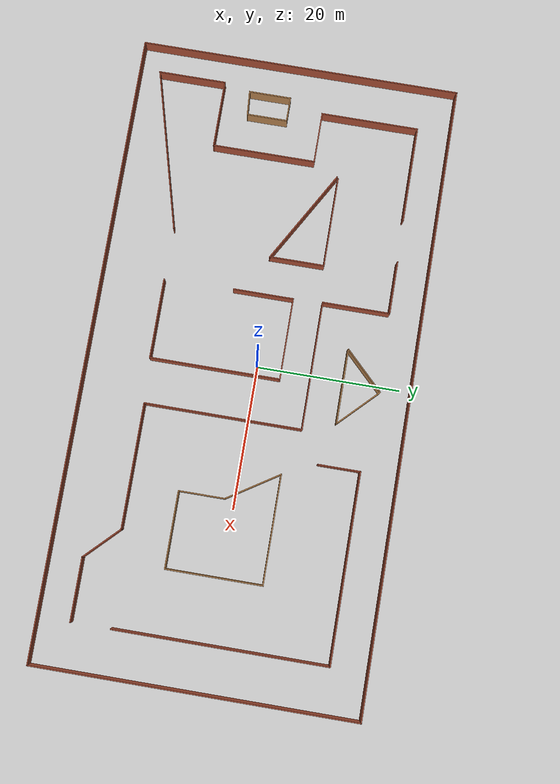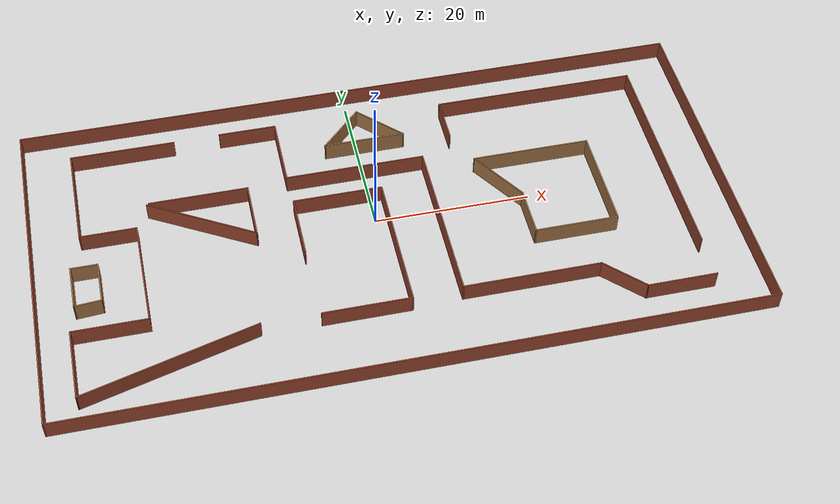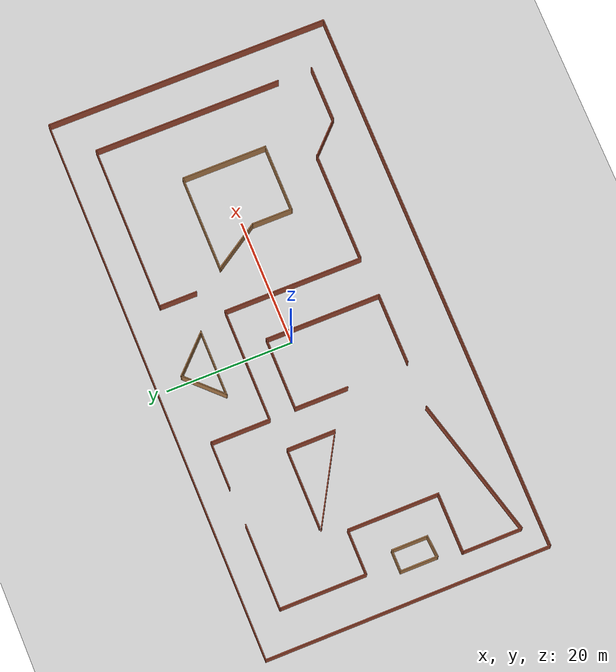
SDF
<sdf version="1.6">
 <world name="default">
  <model name="ground_plane">
   <static>1</static>
   <link name="link">
    <collision name="collision">
     <geometry><plane><normal>0 0 1</normal><size>100 100</size></plane></geometry>
     <surface><friction><ode><mu>100</mu><mu2>50</mu2></ode></friction></surface>
    </collision>
    <visual name="visual">
     <cast_shadows>0</cast_shadows>
     <geometry><plane><normal>0 0 1</normal><size>100 100</size></plane></geometry>
     <material>
      <script><uri>file://media/materials/scripts/gazebo.material</uri><name>Gazebo/Tertiary</name></script>
     </material>
    </visual>
   </link>
  </model>
  <light name="sun" type="directional">
   <pose>0 0 10 0 -0 0</pose>
   <diffuse>0.8 0.8 0.8 1</diffuse>
   <specular>0.2 0.2 0.2 1</specular>
   <attenuation>
    <range>1000</range>
    <constant>0.9</constant>
    <linear>0.01</linear>
    <quadratic>0.001</quadratic>
   </attenuation>
   <direction>-0.5 0.1 -0.9</direction>
  </light>
  <model name="maze_office">
   <pose>0.883362 -0.984451 0 0 -0 0</pose>
   <link name="Wall_10">
    <collision name="Wall_10_Collision">
     <geometry><box><size>13.5 0.15 2.5</size></box></geometry>
     <pose>0 0 1.25 0 -0 0</pose>
    </collision>
    <visual name="Wall_10_Visual">
     <pose>0 0 1.25 0 -0 0</pose>
     <geometry><box><size>13.5 0.15 2.5</size></box></geometry>
     <material>
      <script><uri>file://media/materials/scripts/gazebo.material</uri><name>Gazebo/Bricks</name></script>
      <ambient>1 1 1 1</ambient>
     </material>
     <meta><layer>0</layer></meta>
    </visual>
    <pose>-31.0468 17.7223 0 0 -0 3.14159</pose>
   </link>
   <link name="Wall_11">
    <collision name="Wall_11_Collision">
     <geometry><box><size>13.75 0.15 2.5</size></box></geometry>
     <pose>0 0 1.25 0 -0 0</pose>
    </collision>
    <visual name="Wall_11_Visual">
     <pose>0 0 1.25 0 -0 0</pose>
     <geometry><box><size>13.75 0.15 2.5</size></box></geometry>
     <material>
      <script><uri>file://media/materials/scripts/gazebo.material</uri><name>Gazebo/Bricks</name></script>
      <ambient>1 1 1 1</ambient>
     </material>
     <meta><layer>0</layer></meta>
    </visual>
    <pose>-37.7218 10.9223 0 0 -0 -1.5708</pose>
   </link>
   <link name="Wall_12">
    <collision name="Wall_12_Collision">
     <geometry><box><size>7.25 0.15 2.5</size></box></geometry>
     <pose>0 0 1.25 0 -0 0</pose>
    </collision>
    <visual name="Wall_12_Visual">
     <pose>0 0 1.25 0 -0 0</pose>
     <geometry><box><size>7.25 0.15 2.5</size></box></geometry>
     <material>
      <script><uri>file://media/materials/scripts/gazebo.material</uri><name>Gazebo/Bricks</name></script>
      <ambient>1 1 1 1</ambient>
     </material>
     <meta><layer>0</layer></meta>
    </visual>
    <pose>-34.1718 4.12233 0 0 -0 0</pose>
   </link>
   <link name="Wall_13">
    <collision name="Wall_13_Collision">
     <geometry><box><size>14.5 0.15 2.5</size></box></geometry>
     <pose>0 0 1.25 0 -0 0</pose>
    </collision>
    <visual name="Wall_13_Visual">
     <pose>0 0 1.25 0 -0 0</pose>
     <geometry><box><size>14.5 0.15 2.5</size></box></geometry>
     <material>
      <script><uri>file://media/materials/scripts/gazebo.material</uri><name>Gazebo/Bricks</name></script>
      <ambient>1 1 1 1</ambient>
     </material>
     <meta><layer>0</layer></meta>
    </visual>
    <pose>-30.6218 -3.05267 0 0 -0 -1.5708</pose>
   </link>
   <link name="Wall_14">
    <collision name="Wall_14_Collision">
     <geometry><box><size>9.5 0.15 2.5</size></box></geometry>
     <pose>0 0 1.25 0 -0 0</pose>
    </collision>
    <visual name="Wall_14_Visual">
     <pose>0 0 1.25 0 -0 0</pose>
     <geometry><box><size>9.5 0.15 2.5</size></box></geometry>
     <material>
      <script><uri>file://media/materials/scripts/gazebo.material</uri><name>Gazebo/Bricks</name></script>
      <ambient>1 1 1 1</ambient>
     </material>
     <meta><layer>0</layer></meta>
    </visual>
    <pose>-35.2968 -10.2277 0 0 -0 3.14159</pose>
   </link>
   <link name="Wall_15">
    <collision name="Wall_15_Collision">
     <geometry><box><size>9.5 0.15 2.5</size></box></geometry>
     <pose>0 0 1.25 0 -0 0</pose>
    </collision>
    <visual name="Wall_15_Visual">
     <pose>0 0 1.25 0 -0 0</pose>
     <geometry><box><size>9.5 0.15 2.5</size></box></geometry>
     <material>
      <script><uri>file://media/materials/scripts/gazebo.material</uri><name>Gazebo/Bricks</name></script>
      <ambient>1 1 1 1</ambient>
     </material>
     <meta><layer>0</layer></meta>
    </visual>
    <pose>-39.9718 -14.9027 0 0 -0 -1.5708</pose>
   </link>
   <link name="Wall_17">
    <collision name="Wall_17_Collision">
     <geometry><box><size>23 0.15 2.5</size></box></geometry>
     <pose>0 0 1.25 0 -0 0</pose>
    </collision>
    <visual name="Wall_17_Visual">
     <pose>0 0 1.25 0 -0 0</pose>
     <geometry><box><size>23 0.15 2.5</size></box></geometry>
     <material>
      <script><uri>file://media/materials/scripts/gazebo.material</uri><name>Gazebo/Bricks</name></script>
      <ambient>1 1 1 1</ambient>
     </material>
     <meta><layer>0</layer></meta>
    </visual>
    <pose>-28.9361 -16.6207 0 0 -0 0.261799</pose>
   </link>
   <link name="Wall_19">
    <collision name="Wall_19_Collision">
     <geometry><box><size>11.25 0.15 2.5</size></box></geometry>
     <pose>0 0 1.25 0 -0 0</pose>
    </collision>
    <visual name="Wall_19_Visual">
     <pose>0 0 1.25 0 -0 0</pose>
     <geometry><box><size>11.25 0.15 2.5</size></box></geometry>
     <material>
      <script><uri>file://media/materials/scripts/gazebo.material</uri><name>Gazebo/Bricks</name></script>
      <ambient>1 1 1 1</ambient>
     </material>
     <meta><layer>0</layer></meta>
    </visual>
    <pose>-4.96128 -13.7113 0 0 -0 0</pose>
   </link>
   <link name="Wall_20">
    <collision name="Wall_20_Collision">
     <geometry><box><size>18.25 0.15 2.5</size></box></geometry>
     <pose>0 0 1.25 0 -0 0</pose>
    </collision>
    <visual name="Wall_20_Visual">
     <pose>0 0 1.25 0 -0 0</pose>
     <geometry><box><size>18.25 0.15 2.5</size></box></geometry>
     <material>
      <script><uri>file://media/materials/scripts/gazebo.material</uri><name>Gazebo/Bricks</name></script>
      <ambient>1 1 1 1</ambient>
     </material>
     <meta><layer>0</layer></meta>
    </visual>
    <pose>0.588724 -4.66132 0 0 -0 1.5708</pose>
   </link>
   <link name="Wall_21">
    <collision name="Wall_21_Collision">
     <geometry><box><size>11.5 0.15 2.5</size></box></geometry>
     <pose>0 0 1.25 0 -0 0</pose>
    </collision>
    <visual name="Wall_21_Visual">
     <pose>0 0 1.25 0 -0 0</pose>
     <geometry><box><size>11.5 0.15 2.5</size></box></geometry>
     <material>
      <script><uri>file://media/materials/scripts/gazebo.material</uri><name>Gazebo/Bricks</name></script>
      <ambient>1 1 1 1</ambient>
     </material>
     <meta><layer>0</layer></meta>
    </visual>
    <pose>-5.08628 4.38868 0 0 -0 3.14159</pose>
   </link>
   <link name="Wall_22">
    <collision name="Wall_22_Collision">
     <geometry><box><size>8.5 0.15 2.5</size></box></geometry>
     <pose>0 0 1.25 0 -0 0</pose>
    </collision>
    <visual name="Wall_22_Visual">
     <pose>0 0 1.25 0 -0 0</pose>
     <geometry><box><size>8.5 0.15 2.5</size></box></geometry>
     <material>
      <script><uri>file://media/materials/scripts/gazebo.material</uri><name>Gazebo/Bricks</name></script>
      <ambient>1 1 1 1</ambient>
     </material>
     <meta><layer>0</layer></meta>
    </visual>
    <pose>-10.7613 0.213675 0 0 -0 -1.5708</pose>
   </link>
   <link name="Wall_24">
    <collision name="Wall_24_Collision">
     <geometry><box><size>7.5 0.15 2.5</size></box></geometry>
     <pose>0 0 1.25 0 -0 0</pose>
    </collision>
    <visual name="Wall_24_Visual">
     <pose>0 0 1.25 0 -0 0</pose>
     <geometry><box><size>7.5 0.15 2.5</size></box></geometry>
     <material>
      <script><uri>file://media/materials/scripts/gazebo.material</uri><name>Gazebo/Bricks</name></script>
      <ambient>1 1 1 1</ambient>
     </material>
     <meta><layer>0</layer></meta>
    </visual>
    <pose>-14.6328 17.8461 0 0 -0 0</pose>
   </link>
   <link name="Wall_25">
    <collision name="Wall_25_Collision">
     <geometry><box><size>9.5 0.15 2.5</size></box></geometry>
     <pose>0 0 1.25 0 -0 0</pose>
    </collision>
    <visual name="Wall_25_Visual">
     <pose>0 0 1.25 0 -0 0</pose>
     <geometry><box><size>9.5 0.15 2.5</size></box></geometry>
     <material>
      <script><uri>file://media/materials/scripts/gazebo.material</uri><name>Gazebo/Bricks</name></script>
      <ambient>1 1 1 1</ambient>
     </material>
     <meta><layer>0</layer></meta>
    </visual>
    <pose>-10.9578 13.1711 0 0 -0 -1.5708</pose>
   </link>
   <link name="Wall_26">
    <collision name="Wall_26_Collision">
     <geometry><box><size>18 0.15 2.5</size></box></geometry>
     <pose>0 0 1.25 0 -0 0</pose>
    </collision>
    <visual name="Wall_26_Visual">
     <pose>0 0 1.25 0 -0 0</pose>
     <geometry><box><size>18 0.15 2.5</size></box></geometry>
     <material>
      <script><uri>file://media/materials/scripts/gazebo.material</uri><name>Gazebo/Bricks</name></script>
      <ambient>1 1 1 1</ambient>
     </material>
     <meta><layer>0</layer></meta>
    </visual>
    <pose>-2.03281 8.49608 0 0 -0 0</pose>
   </link>
   <link name="Wall_27">
    <collision name="Wall_27_Collision">
     <geometry><box><size>22 0.15 2.5</size></box></geometry>
     <pose>0 0 1.25 0 -0 0</pose>
    </collision>
    <visual name="Wall_27_Visual">
     <pose>0 0 1.25 0 -0 0</pose>
     <geometry><box><size>22 0.15 2.5</size></box></geometry>
     <material>
      <script><uri>file://media/materials/scripts/gazebo.material</uri><name>Gazebo/Bricks</name></script>
      <ambient>1 1 1 1</ambient>
     </material>
     <meta><layer>0</layer></meta>
    </visual>
    <pose>6.89219 -2.42892 0 0 -0 -1.5708</pose>
   </link>
   <link name="Wall_28">
    <collision name="Wall_28_Collision">
     <geometry><box><size>17.5 0.15 2.5</size></box></geometry>
     <pose>0 0 1.25 0 -0 0</pose>
    </collision>
    <visual name="Wall_28_Visual">
     <pose>0 0 1.25 0 -0 0</pose>
     <geometry><box><size>17.5 0.15 2.5</size></box></geometry>
     <material>
      <script><uri>file://media/materials/scripts/gazebo.material</uri><name>Gazebo/Bricks</name></script>
      <ambient>1 1 1 1</ambient>
     </material>
     <meta><layer>0</layer></meta>
    </visual>
    <pose>15.5672 -13.3539 0 0 -0 0</pose>
   </link>
   <link name="Wall_29">
    <collision name="Wall_29_Collision">
     <geometry><box><size>6.5 0.15 2.5</size></box></geometry>
     <pose>0 0 1.25 0 -0 0</pose>
    </collision>
    <visual name="Wall_29_Visual">
     <pose>0 0 1.25 0 -0 0</pose>
     <geometry><box><size>6.5 0.15 2.5</size></box></geometry>
     <material>
      <script><uri>file://media/materials/scripts/gazebo.material</uri><name>Gazebo/Bricks</name></script>
      <ambient>1 1 1 1</ambient>
     </material>
     <meta><layer>0</layer></meta>
    </visual>
    <pose>26.4873 -15.599 0 0 -0 -0.785398</pose>
   </link>
   <link name="Wall_3">
    <collision name="Wall_3_Collision">
     <geometry><box><size>88 0.15 2.5</size></box></geometry>
     <pose>0 0 1.25 0 -0 0</pose>
    </collision>
    <visual name="Wall_3_Visual">
     <pose>0 0 1.25 0 -0 0</pose>
     <geometry><box><size>88 0.15 2.5</size></box></geometry>
     <material>
      <script><uri>file://media/materials/scripts/gazebo.material</uri><name>Gazebo/Bricks</name></script>
      <ambient>1 1 1 1</ambient>
     </material>
     <meta><layer>0</layer></meta>
    </visual>
    <pose>-1e-06 22.425 0 0 -0 0</pose>
   </link>
   <link name="Wall_30">
    <collision name="Wall_30_Collision">
     <geometry><box><size>8.88621 0.15 2.5</size></box></geometry>
     <pose>0 0 1.25 0 -0 0</pose>
    </collision>
    <visual name="Wall_30_Visual">
     <pose>0 0 1.25 0 -0 0</pose>
     <geometry><box><size>8.88621 0.15 2.5</size></box></geometry>
     <material>
      <script><uri>file://media/materials/scripts/gazebo.material</uri><name>Gazebo/Bricks</name></script>
      <ambient>1 1 1 1</ambient>
     </material>
     <meta><layer>0</layer></meta>
    </visual>
    <pose>33.1004 -17.844 0 0 -0 0</pose>
   </link>
   <link name="Wall_32">
    <collision name="Wall_32_Collision">
     <geometry><box><size>26.3862 0.15 2.5</size></box></geometry>
     <pose>0 0 1.25 0 -0 0</pose>
    </collision>
    <visual name="Wall_32_Visual">
     <pose>0 0 1.25 0 -0 0</pose>
     <geometry><box><size>26.3862 0.15 2.5</size></box></geometry>
     <material>
      <script><uri>file://media/materials/scripts/gazebo.material</uri><name>Gazebo/Bricks</name></script>
      <ambient>1 1 1 1</ambient>
     </material>
     <meta><layer>0</layer></meta>
    </visual>
    <pose>24.3504 17.256 0 0 -0 3.14159</pose>
   </link>
   <link name="Wall_33">
    <collision name="Wall_33_Collision">
     <geometry><box><size>6 0.15 2.5</size></box></geometry>
     <pose>0 0 1.25 0 -0 0</pose>
    </collision>
    <visual name="Wall_33_Visual">
     <pose>0 0 1.25 0 -0 0</pose>
     <geometry><box><size>6 0.15 2.5</size></box></geometry>
     <material>
      <script><uri>file://media/materials/scripts/gazebo.material</uri><name>Gazebo/Bricks</name></script>
      <ambient>1 1 1 1</ambient>
     </material>
     <meta><layer>0</layer></meta>
    </visual>
    <pose>11.2323 14.331 0 0 -0 -1.5708</pose>
   </link>
   <link name="Wall_35">
    <collision name="Wall_35_Collision">
     <geometry><box><size>29.75 0.15 2.5</size></box></geometry>
     <pose>0 0 1.25 0 -0 0</pose>
    </collision>
    <visual name="Wall_35_Visual">
     <pose>0 0 1.25 0 -0 0</pose>
     <geometry><box><size>29.75 0.15 2.5</size></box></geometry>
     <material>
      <script><uri>file://media/materials/scripts/gazebo.material</uri><name>Gazebo/Bricks</name></script>
      <ambient>1 1 1 1</ambient>
     </material>
     <meta><layer>0</layer></meta>
    </visual>
    <pose>37.4685 2.45595 0 0 -0 -1.5708</pose>
   </link>
   <link name="Wall_37">
    <collision name="Wall_37_Collision">
     <geometry><box><size>12.75 0.15 2.5</size></box></geometry>
     <pose>0 0 1.25 0 -0 0</pose>
    </collision>
    <visual name="Wall_37_Visual">
     <pose>0 0 1.25 0 -0 0</pose>
     <geometry><box><size>12.75 0.15 2.5</size></box></geometry>
     <material>
      <script><uri>file://media/materials/scripts/gazebo.material</uri><name>Gazebo/Bricks</name></script>
      <ambient>1 1 1 1</ambient>
     </material>
     <meta><layer>0</layer></meta>
    </visual>
    <pose>-22.4032 7.82196 0 0 -0 0</pose>
   </link>
   <link name="Wall_38">
    <collision name="Wall_38_Collision">
     <geometry><box><size>7.75 0.15 2.5</size></box></geometry>
     <pose>0 0 1.25 0 -0 0</pose>
    </collision>
    <visual name="Wall_38_Visual">
     <pose>0 0 1.25 0 -0 0</pose>
     <geometry><box><size>7.75 0.15 2.5</size></box></geometry>
     <material>
      <script><uri>file://media/materials/scripts/gazebo.material</uri><name>Gazebo/Bricks</name></script>
      <ambient>1 1 1 1</ambient>
     </material>
     <meta><layer>0</layer></meta>
    </visual>
    <pose>-16.1032 4.02196 0 0 -0 -1.5708</pose>
   </link>
   <link name="Wall_39">
    <collision name="Wall_39_Collision">
     <geometry><box><size>15 0.15 2.5</size></box></geometry>
     <pose>0 0 1.25 0 -0 0</pose>
    </collision>
    <visual name="Wall_39_Visual">
     <pose>0 0 1.25 0 -0 0</pose>
     <geometry><box><size>15 0.15 2.5</size></box></geometry>
     <material>
      <script><uri>file://media/materials/scripts/gazebo.material</uri><name>Gazebo/Bricks</name></script>
      <ambient>1 1 1 1</ambient>
     </material>
     <meta><layer>0</layer></meta>
    </visual>
    <pose>-22.5334 3.93446 0 0 -0 2.61799</pose>
   </link>
   <link name="Wall_4">
    <collision name="Wall_4_Collision">
     <geometry><box><size>45 0.15 2.5</size></box></geometry>
     <pose>0 0 1.25 0 -0 0</pose>
    </collision>
    <visual name="Wall_4_Visual">
     <pose>0 0 1.25 0 -0 0</pose>
     <geometry><box><size>45 0.15 2.5</size></box></geometry>
     <material>
      <script><uri>file://media/materials/scripts/gazebo.material</uri><name>Gazebo/Bricks</name></script>
      <ambient>1 1 1 1</ambient>
     </material>
     <meta><layer>0</layer></meta>
    </visual>
    <pose>43.925 -1e-06 0 0 -0 -1.5708</pose>
   </link>
   <link name="Wall_41">
    <collision name="Wall_41_Collision">
     <geometry><box><size>6 0.15 2.5</size></box></geometry>
     <pose>0 0 1.25 0 -0 0</pose>
    </collision>
    <visual name="Wall_41_Visual">
     <pose>0 0 1.25 0 -0 0</pose>
     <geometry><box><size>6 0.15 2.5</size></box></geometry>
     <material>
      <script><uri>file://media/materials/scripts/gazebo.material</uri><name>Gazebo/Wood</name></script>
      <ambient>1 1 1 1</ambient>
     </material>
     <meta><layer>0</layer></meta>
    </visual>
    <pose>-39.2223 -3.60856 0 0 -0 1.5708</pose>
   </link>
   <link name="Wall_42">
    <collision name="Wall_42_Collision">
     <geometry><box><size>3.5 0.15 2.5</size></box></geometry>
     <pose>0 0 1.25 0 -0 0</pose>
    </collision>
    <visual name="Wall_42_Visual">
     <pose>0 0 1.25 0 -0 0</pose>
     <geometry><box><size>3.5 0.15 2.5</size></box></geometry>
     <material>
      <script><uri>file://media/materials/scripts/gazebo.material</uri><name>Gazebo/Wood</name></script>
      <ambient>1 1 1 1</ambient>
     </material>
     <meta><layer>0</layer></meta>
    </visual>
    <pose>-37.5473 -0.683562 0 0 -0 0</pose>
   </link>
   <link name="Wall_43">
    <collision name="Wall_43_Collision">
     <geometry><box><size>5.75 0.15 2.5</size></box></geometry>
     <pose>0 0 1.25 0 -0 0</pose>
    </collision>
    <visual name="Wall_43_Visual">
     <pose>0 0 1.25 0 -0 0</pose>
     <geometry><box><size>5.75 0.15 2.5</size></box></geometry>
     <material>
      <script><uri>file://media/materials/scripts/gazebo.material</uri><name>Gazebo/Wood</name></script>
      <ambient>1 1 1 1</ambient>
     </material>
     <meta><layer>0</layer></meta>
    </visual>
    <pose>-35.8723 -3.48356 0 0 -0 -1.5708</pose>
   </link>
   <link name="Wall_44">
    <collision name="Wall_44_Collision">
     <geometry><box><size>3.50931 0.15 2.5</size></box></geometry>
     <pose>0 0 1.25 0 -0 0</pose>
    </collision>
    <visual name="Wall_44_Visual">
     <pose>0 0 1.25 0 -0 0</pose>
     <geometry><box><size>3.50931 0.15 2.5</size></box></geometry>
     <material>
      <script><uri>file://media/materials/scripts/gazebo.material</uri><name>Gazebo/Wood</name></script>
      <ambient>1 1 1 1</ambient>
     </material>
     <meta><layer>0</layer></meta>
    </visual>
    <pose>-37.5473 -6.40856 0 0 -0 -3.0671</pose>
   </link>
   <link name="Wall_46">
    <collision name="Wall_46_Collision">
     <geometry><box><size>15.25 0.15 2.5</size></box></geometry>
     <pose>0 0 1.25 0 -0 0</pose>
    </collision>
    <visual name="Wall_46_Visual">
     <pose>0 0 1.25 0 -0 0</pose>
     <geometry><box><size>15.25 0.15 2.5</size></box></geometry>
     <material>
      <script><uri>file://media/materials/scripts/gazebo.material</uri><name>Gazebo/Wood</name></script>
      <ambient>1 1 1 1</ambient>
     </material>
     <meta><layer>0</layer></meta>
    </visual>
    <pose>20.9233 6.70817 0 0 -0 0</pose>
   </link>
   <link name="Wall_47">
    <collision name="Wall_47_Collision">
     <geometry><box><size>13.5 0.15 2.5</size></box></geometry>
     <pose>0 0 1.25 0 -0 0</pose>
    </collision>
    <visual name="Wall_47_Visual">
     <pose>0 0 1.25 0 -0 0</pose>
     <geometry><box><size>13.5 0.15 2.5</size></box></geometry>
     <material>
      <script><uri>file://media/materials/scripts/gazebo.material</uri><name>Gazebo/Wood</name></script>
      <ambient>1 1 1 1</ambient>
     </material>
     <meta><layer>0</layer></meta>
    </visual>
    <pose>28.4733 0.033173 0 0 -0 -1.5708</pose>
   </link>
   <link name="Wall_48">
    <collision name="Wall_48_Collision">
     <geometry><box><size>10.75 0.15 2.5</size></box></geometry>
     <pose>0 0 1.25 0 -0 0</pose>
    </collision>
    <visual name="Wall_48_Visual">
     <pose>0 0 1.25 0 -0 0</pose>
     <geometry><box><size>10.75 0.15 2.5</size></box></geometry>
     <material>
      <script><uri>file://media/materials/scripts/gazebo.material</uri><name>Gazebo/Wood</name></script>
      <ambient>1 1 1 1</ambient>
     </material>
     <meta><layer>0</layer></meta>
    </visual>
    <pose>23.1733 -6.64183 0 0 -0 3.14159</pose>
   </link>
   <link name="Wall_49">
    <collision name="Wall_49_Collision">
     <geometry><box><size>6.5 0.15 2.5</size></box></geometry>
     <pose>0 0 1.25 0 -0 0</pose>
    </collision>
    <visual name="Wall_49_Visual">
     <pose>0 0 1.25 0 -0 0</pose>
     <geometry><box><size>6.5 0.15 2.5</size></box></geometry>
     <material>
      <script><uri>file://media/materials/scripts/gazebo.material</uri><name>Gazebo/Wood</name></script>
      <ambient>1 1 1 1</ambient>
     </material>
     <meta><layer>0</layer></meta>
    </visual>
    <pose>17.8733 -3.46683 0 0 -0 1.5708</pose>
   </link>
   <link name="Wall_50">
    <collision name="Wall_50_Collision">
     <geometry><box><size>8.47166 0.15 2.5</size></box></geometry>
     <pose>0 0 1.25 0 -0 0</pose>
    </collision>
    <visual name="Wall_50_Visual">
     <pose>0 0 1.25 0 -0 0</pose>
     <geometry><box><size>8.47166 0.15 2.5</size></box></geometry>
     <material>
      <script><uri>file://media/materials/scripts/gazebo.material</uri><name>Gazebo/Wood</name></script>
      <ambient>1 1 1 1</ambient>
     </material>
     <meta><layer>0</layer></meta>
    </visual>
    <pose>15.6234 3.20817 0 0 -0 2.14213</pose>
   </link>
   <link name="Wall_53">
    <collision name="Wall_53_Collision">
     <geometry><box><size>10.5 0.15 2.5</size></box></geometry>
     <pose>0 0 1.25 0 -0 0</pose>
    </collision>
    <visual name="Wall_53_Visual">
     <pose>0 0 1.25 0 -0 0</pose>
     <geometry><box><size>10.5 0.15 2.5</size></box></geometry>
     <material>
      <script><uri>file://media/materials/scripts/gazebo.material</uri><name>Gazebo/Wood</name></script>
      <ambient>1 1 1 1</ambient>
     </material>
     <meta><layer>0</layer></meta>
    </visual>
    <pose>0.108923 13.0197 0 0 -0 0</pose>
   </link>
   <link name="Wall_54">
    <collision name="Wall_54_Collision">
     <geometry><box><size>7.5 0.15 2.5</size></box></geometry>
     <pose>0 0 1.25 0 -0 0</pose>
    </collision>
    <visual name="Wall_54_Visual">
     <pose>0 0 1.25 0 -0 0</pose>
     <geometry><box><size>7.5 0.15 2.5</size></box></geometry>
     <material>
      <script><uri>file://media/materials/scripts/gazebo.material</uri><name>Gazebo/Wood</name></script>
      <ambient>1 1 1 1</ambient>
     </material>
     <meta><layer>0</layer></meta>
    </visual>
    <pose>2.68531 15.6183 0 0 -0 2.35619</pose>
   </link>
   <link name="Wall_55">
    <collision name="Wall_55_Collision">
     <geometry><box><size>7.46862 0.15 2.5</size></box></geometry>
     <pose>0 0 1.25 0 -0 0</pose>
    </collision>
    <visual name="Wall_55_Visual">
     <pose>0 0 1.25 0 -0 0</pose>
     <geometry><box><size>7.46862 0.15 2.5</size></box></geometry>
     <material>
      <script><uri>file://media/materials/scripts/gazebo.material</uri><name>Gazebo/Wood</name></script>
      <ambient>1 1 1 1</ambient>
     </material>
     <meta><layer>0</layer></meta>
    </visual>
    <pose>-2.48969 15.6183 0 0 -0 -2.3519</pose>
   </link>
   <link name="Wall_7">
    <collision name="Wall_7_Collision">
     <geometry><box><size>88 0.15 2.5</size></box></geometry>
     <pose>0 0 1.25 0 -0 0</pose>
    </collision>
    <visual name="Wall_7_Visual">
     <pose>0 0 1.25 0 -0 0</pose>
     <geometry><box><size>88 0.15 2.5</size></box></geometry>
     <material>
      <script><uri>file://media/materials/scripts/gazebo.material</uri><name>Gazebo/Bricks</name></script>
      <ambient>1 1 1 1</ambient>
     </material>
     <meta><layer>0</layer></meta>
    </visual>
    <pose>-1e-06 -22.425 0 0 -0 3.14159</pose>
   </link>
   <link name="Wall_8">
    <collision name="Wall_8_Collision">
     <geometry><box><size>45 0.15 2.5</size></box></geometry>
     <pose>0 0 1.25 0 -0 0</pose>
    </collision>
    <visual name="Wall_8_Visual">
     <pose>0 0 1.25 0 -0 0</pose>
     <geometry><box><size>45 0.15 2.5</size></box></geometry>
     <material>
      <script><uri>file://media/materials/scripts/gazebo.material</uri><name>Gazebo/Bricks</name></script>
      <ambient>1 1 1 1</ambient>
     </material>
     <meta><layer>0</layer></meta>
    </visual>
    <pose>-43.925 -1e-06 0 0 -0 1.5708</pose>
   </link>
   <static>1</static>
  </model>
  <gravity>0 0 -9.8</gravity>
  <magnetic_field>6e-06 2.3e-05 -4.2e-05</magnetic_field>
  <atmosphere type="adiabatic"/>
  <physics name="default_physics" default="0" type="ode">
   <max_step_size>0.001</max_step_size>
   <real_time_factor>1</real_time_factor>
   <real_time_update_rate>1000</real_time_update_rate>
  </physics>
  <scene><ambient>0.4 0.4 0.4 1</ambient><background>0.7 0.7 0.7 1</background><shadows>1</shadows></scene>
  <audio><device>default</device></audio>
  <spherical_coordinates>
   <surface_model>EARTH_WGS84</surface_model>
   <latitude_deg>0</latitude_deg>
   <longitude_deg>0</longitude_deg>
   <elevation>0</elevation>
   <heading_deg>0</heading_deg>
  </spherical_coordinates>
 </world>
</sdf>
